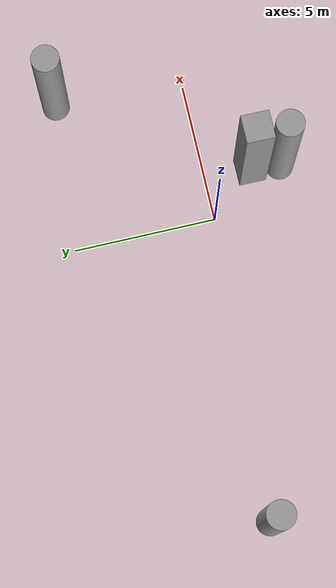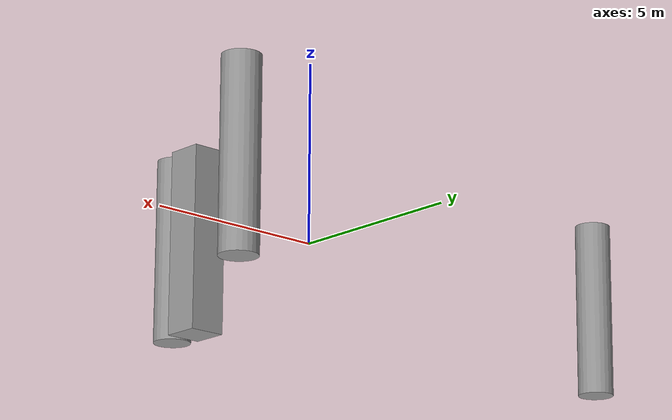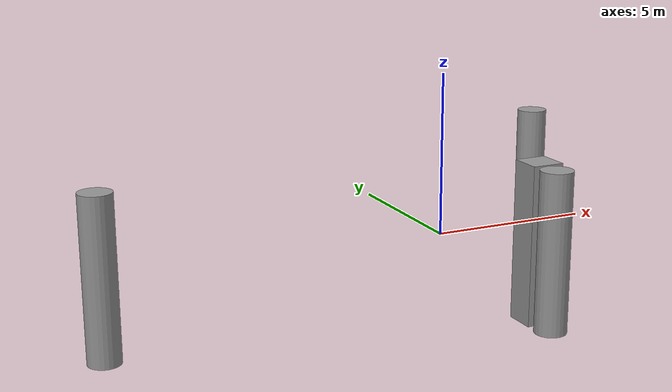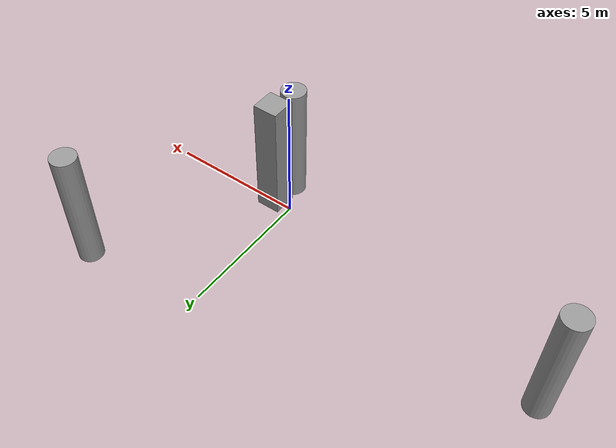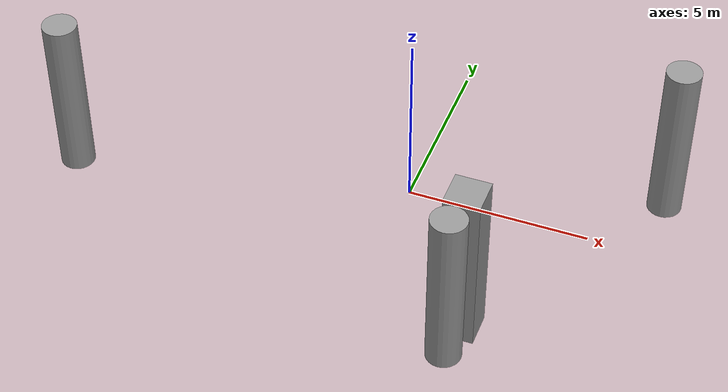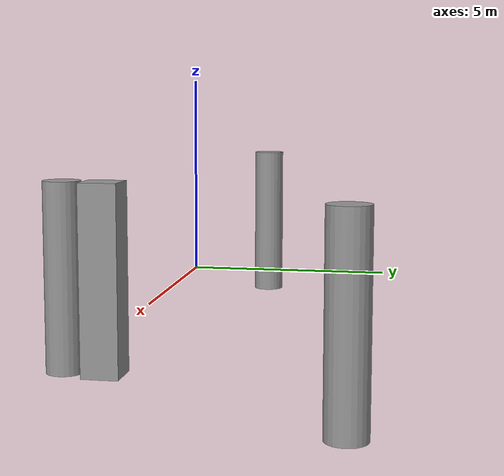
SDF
<?xml version='1.0'?>
<sdf version='1.6'>
  <model name='gas_station'>
    <link name='link_1'>
      <inertial>
        <mass>1</mass>
        <inertia>
          <ixx>0.145833</ixx>
          <ixy>0</ixy>
          <ixz>0</ixz>
          <iyy>0.145833</iyy>
          <iyz>0</iyz>
          <izz>0.125</izz>
        </inertia>
        <pose frame=''>0 0 0 0 -0 0</pose>
      </inertial>
      <pose frame=''>-10.5227 0.411147 0 0 -0 0</pose>
      <gravity>1</gravity>
      <self_collide>0</self_collide>
      <kinematic>0</kinematic>
      <enable_wind>0</enable_wind>
      <visual name='visual'>
        <pose frame=''>0 0 0 0 -0 0</pose>
        <geometry>
          <cylinder>
            <radius>0.5</radius>
            <length>5</length>
          </cylinder>
        </geometry>
        <material>
          <lighting>1</lighting>
          <script>
            <uri>file://media/materials/scripts/gazebo.material</uri>
            <name>Gazebo/Grey</name>
          </script>
          <shader type='vertex'>
            <normal_map>__default__</normal_map>
          </shader>
          <ambient>0.3 0.3 0.3 1</ambient>
          <diffuse>0.7 0.7 0.7 1</diffuse>
          <specular>0.01 0.01 0.01 1</specular>
          <emissive>0 0 0 1</emissive>
        </material>
        <transparency>0</transparency>
        <cast_shadows>1</cast_shadows>
      </visual>
      <collision name='collision'>
        <laser_retro>0</laser_retro>
        <max_contacts>10</max_contacts>
        <pose frame=''>0 0 0 0 -0 0</pose>
        <geometry>
          <cylinder>
            <radius>0.5</radius>
            <length>5</length>
          </cylinder>
        </geometry>
        <surface>
          <friction>
            <ode>
              <mu>1</mu>
              <mu2>1</mu2>
              <fdir1>0 0 0</fdir1>
              <slip1>0</slip1>
              <slip2>0</slip2>
            </ode>
            <torsional>
              <coefficient>1</coefficient>
              <patch_radius>0</patch_radius>
              <surface_radius>0</surface_radius>
              <use_patch_radius>1</use_patch_radius>
              <ode>
                <slip>0</slip>
              </ode>
            </torsional>
          </friction>
          <bounce>
            <restitution_coefficient>0</restitution_coefficient>
            <threshold>1e+06</threshold>
          </bounce>
          <contact>
            <collide_without_contact>0</collide_without_contact>
            <collide_without_contact_bitmask>1</collide_without_contact_bitmask>
            <collide_bitmask>1</collide_bitmask>
            <ode>
              <soft_cfm>0</soft_cfm>
              <soft_erp>0.2</soft_erp>
              <kp>1e+13</kp>
              <kd>1</kd>
              <max_vel>0.01</max_vel>
              <min_depth>0</min_depth>
            </ode>
            <bullet>
              <split_impulse>1</split_impulse>
              <split_impulse_penetration_threshold>-0.01</split_impulse_penetration_threshold>
              <soft_cfm>0</soft_cfm>
              <soft_erp>0.2</soft_erp>
              <kp>1e+13</kp>
              <kd>1</kd>
            </bullet>
          </contact>
        </surface>
      </collision>
    </link>
    <link name='link_1_clone'>
      <inertial>
        <mass>1</mass>
        <inertia>
          <ixx>0.145833</ixx>
          <ixy>0</ixy>
          <ixz>0</ixz>
          <iyy>0.145833</iyy>
          <iyz>0</iyz>
          <izz>0.125</izz>
        </inertia>
        <pose frame=''>0 0 0 0 -0 0</pose>
      </inertial>
      <pose frame=''>6.20822 4.5661 0 0 -0 0</pose>
      <gravity>1</gravity>
      <self_collide>0</self_collide>
      <kinematic>0</kinematic>
      <enable_wind>0</enable_wind>
      <visual name='visual'>
        <pose frame=''>0 0 0 0 -0 0</pose>
        <geometry>
          <cylinder>
            <radius>0.5</radius>
            <length>5</length>
          </cylinder>
        </geometry>
        <material>
          <lighting>1</lighting>
          <script>
            <uri>file://media/materials/scripts/gazebo.material</uri>
            <name>Gazebo/Grey</name>
          </script>
          <shader type='vertex'>
            <normal_map>__default__</normal_map>
          </shader>
          <ambient>0.3 0.3 0.3 1</ambient>
          <diffuse>0.7 0.7 0.7 1</diffuse>
          <specular>0.01 0.01 0.01 1</specular>
          <emissive>0 0 0 1</emissive>
        </material>
        <transparency>0</transparency>
        <cast_shadows>1</cast_shadows>
      </visual>
      <collision name='collision'>
        <laser_retro>0</laser_retro>
        <max_contacts>10</max_contacts>
        <pose frame=''>0 0 0 0 -0 0</pose>
        <geometry>
          <cylinder>
            <radius>0.5</radius>
            <length>5</length>
          </cylinder>
        </geometry>
        <surface>
          <friction>
            <ode>
              <mu>1</mu>
              <mu2>1</mu2>
              <fdir1>0 0 0</fdir1>
              <slip1>0</slip1>
              <slip2>0</slip2>
            </ode>
            <torsional>
              <coefficient>1</coefficient>
              <patch_radius>0</patch_radius>
              <surface_radius>0</surface_radius>
              <use_patch_radius>1</use_patch_radius>
              <ode>
                <slip>0</slip>
              </ode>
            </torsional>
          </friction>
          <bounce>
            <restitution_coefficient>0</restitution_coefficient>
            <threshold>1e+06</threshold>
          </bounce>
          <contact>
            <collide_without_contact>0</collide_without_contact>
            <collide_without_contact_bitmask>1</collide_without_contact_bitmask>
            <collide_bitmask>1</collide_bitmask>
            <ode>
              <soft_cfm>0</soft_cfm>
              <soft_erp>0.2</soft_erp>
              <kp>1e+13</kp>
              <kd>1</kd>
              <max_vel>0.01</max_vel>
              <min_depth>0</min_depth>
            </ode>
            <bullet>
              <split_impulse>1</split_impulse>
              <split_impulse_penetration_threshold>-0.01</split_impulse_penetration_threshold>
              <soft_cfm>0</soft_cfm>
              <soft_erp>0.2</soft_erp>
              <kp>1e+13</kp>
              <kd>1</kd>
            </bullet>
          </contact>
        </surface>
      </collision>
    </link>
    <link name='link_1_clone_0'>
      <inertial>
        <mass>1</mass>
        <inertia>
          <ixx>0.145833</ixx>
          <ixy>0</ixy>
          <ixz>0</ixz>
          <iyy>0.145833</iyy>
          <iyz>0</iyz>
          <izz>0.125</izz>
        </inertia>
        <pose frame=''>0 0 0 0 -0 0</pose>
      </inertial>
      <pose frame=''>2.09735 -3.04184 0 0 -0 0</pose>
      <gravity>1</gravity>
      <self_collide>0</self_collide>
      <kinematic>0</kinematic>
      <enable_wind>0</enable_wind>
      <visual name='visual'>
        <pose frame=''>0 0 0 0 -0 0</pose>
        <geometry>
          <cylinder>
            <radius>0.5</radius>
            <length>5</length>
          </cylinder>
        </geometry>
        <material>
          <lighting>1</lighting>
          <script>
            <uri>file://media/materials/scripts/gazebo.material</uri>
            <name>Gazebo/Grey</name>
          </script>
          <shader type='vertex'>
            <normal_map>__default__</normal_map>
          </shader>
          <ambient>0.3 0.3 0.3 1</ambient>
          <diffuse>0.7 0.7 0.7 1</diffuse>
          <specular>0.01 0.01 0.01 1</specular>
          <emissive>0 0 0 1</emissive>
        </material>
        <transparency>0</transparency>
        <cast_shadows>1</cast_shadows>
      </visual>
      <collision name='collision'>
        <laser_retro>0</laser_retro>
        <max_contacts>10</max_contacts>
        <pose frame=''>0 0 0 0 -0 0</pose>
        <geometry>
          <cylinder>
            <radius>0.5</radius>
            <length>5</length>
          </cylinder>
        </geometry>
        <surface>
          <friction>
            <ode>
              <mu>1</mu>
              <mu2>1</mu2>
              <fdir1>0 0 0</fdir1>
              <slip1>0</slip1>
              <slip2>0</slip2>
            </ode>
            <torsional>
              <coefficient>1</coefficient>
              <patch_radius>0</patch_radius>
              <surface_radius>0</surface_radius>
              <use_patch_radius>1</use_patch_radius>
              <ode>
                <slip>0</slip>
              </ode>
            </torsional>
          </friction>
          <bounce>
            <restitution_coefficient>0</restitution_coefficient>
            <threshold>1e+06</threshold>
          </bounce>
          <contact>
            <collide_without_contact>0</collide_without_contact>
            <collide_without_contact_bitmask>1</collide_without_contact_bitmask>
            <collide_bitmask>1</collide_bitmask>
            <ode>
              <soft_cfm>0</soft_cfm>
              <soft_erp>0.2</soft_erp>
              <kp>1e+13</kp>
              <kd>1</kd>
              <max_vel>0.01</max_vel>
              <min_depth>0</min_depth>
            </ode>
            <bullet>
              <split_impulse>1</split_impulse>
              <split_impulse_penetration_threshold>-0.01</split_impulse_penetration_threshold>
              <soft_cfm>0</soft_cfm>
              <soft_erp>0.2</soft_erp>
              <kp>1e+13</kp>
              <kd>1</kd>
            </bullet>
          </contact>
        </surface>
      </collision>
    </link>
    <link name='link_2'>
      <inertial>
        <mass>1</mass>
        <inertia>
          <ixx>0.166667</ixx>
          <ixy>0</ixy>
          <ixz>0</ixz>
          <iyy>0.166667</iyy>
          <iyz>0</iyz>
          <izz>0.166667</izz>
        </inertia>
        <pose frame=''>0 0 0 0 -0 0</pose>
      </inertial>
      <pose frame=''>2.21706 -1.93541 0 0 -0 0</pose>
      <gravity>1</gravity>
      <self_collide>0</self_collide>
      <kinematic>0</kinematic>
      <enable_wind>0</enable_wind>
      <visual name='visual'>
        <pose frame=''>0 0 0 0 -0 0</pose>
        <geometry>
          <box>
            <size>1 1 5</size>
          </box>
        </geometry>
        <material>
          <lighting>1</lighting>
          <script>
            <uri>file://media/materials/scripts/gazebo.material</uri>
            <name>Gazebo/Grey</name>
          </script>
          <shader type='vertex'>
            <normal_map>__default__</normal_map>
          </shader>
          <ambient>0.3 0.3 0.3 1</ambient>
          <diffuse>0.7 0.7 0.7 1</diffuse>
          <specular>0.01 0.01 0.01 1</specular>
          <emissive>0 0 0 1</emissive>
        </material>
        <transparency>0</transparency>
        <cast_shadows>1</cast_shadows>
      </visual>
      <collision name='collision'>
        <laser_retro>0</laser_retro>
        <max_contacts>10</max_contacts>
        <pose frame=''>0 0 0 0 -0 0</pose>
        <geometry>
          <box>
            <size>1 1 5</size>
          </box>
        </geometry>
        <surface>
          <friction>
            <ode>
              <mu>1</mu>
              <mu2>1</mu2>
              <fdir1>0 0 0</fdir1>
              <slip1>0</slip1>
              <slip2>0</slip2>
            </ode>
            <torsional>
              <coefficient>1</coefficient>
              <patch_radius>0</patch_radius>
              <surface_radius>0</surface_radius>
              <use_patch_radius>1</use_patch_radius>
              <ode>
                <slip>0</slip>
              </ode>
            </torsional>
          </friction>
          <bounce>
            <restitution_coefficient>0</restitution_coefficient>
            <threshold>1e+06</threshold>
          </bounce>
          <contact>
            <collide_without_contact>0</collide_without_contact>
            <collide_without_contact_bitmask>1</collide_without_contact_bitmask>
            <collide_bitmask>1</collide_bitmask>
            <ode>
              <soft_cfm>0</soft_cfm>
              <soft_erp>0.2</soft_erp>
              <kp>1e+13</kp>
              <kd>1</kd>
              <max_vel>0.01</max_vel>
              <min_depth>0</min_depth>
            </ode>
            <bullet>
              <split_impulse>1</split_impulse>
              <split_impulse_penetration_threshold>-0.01</split_impulse_penetration_threshold>
              <soft_cfm>0</soft_cfm>
              <soft_erp>0.2</soft_erp>
              <kp>1e+13</kp>
              <kd>1</kd>
            </bullet>
          </contact>
        </surface>
      </collision>
    </link>
    <static>0</static>
    <allow_auto_disable>1</allow_auto_disable>
  </model>
</sdf>
